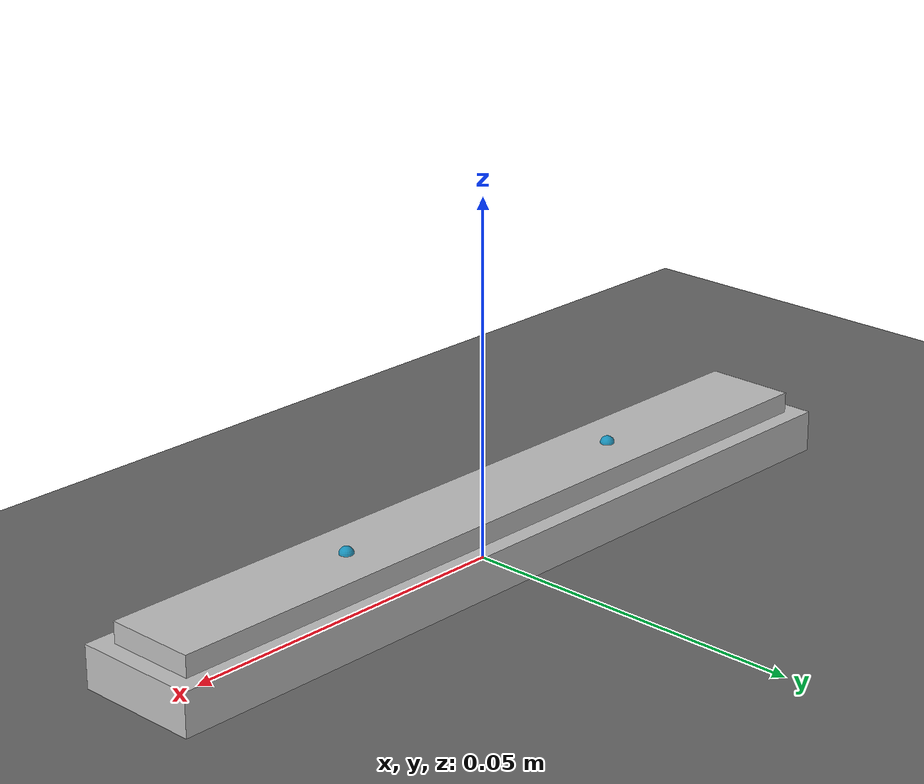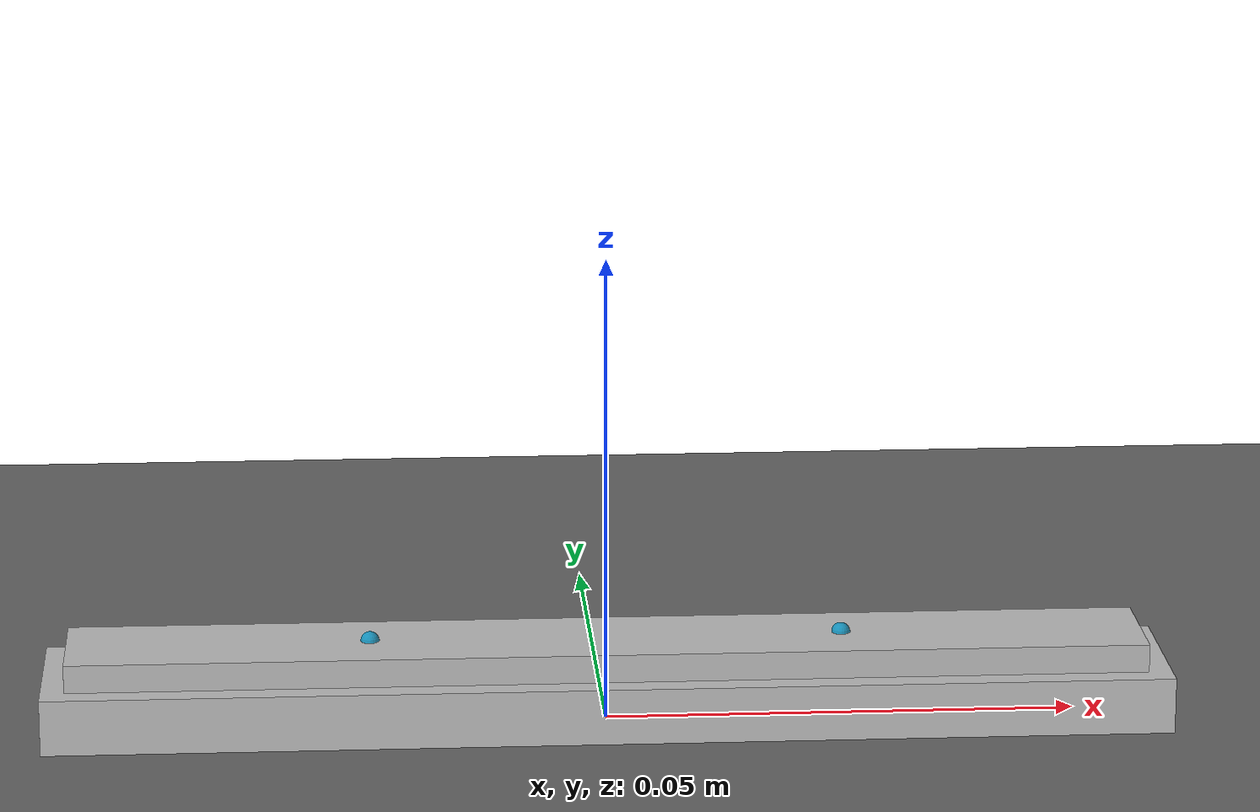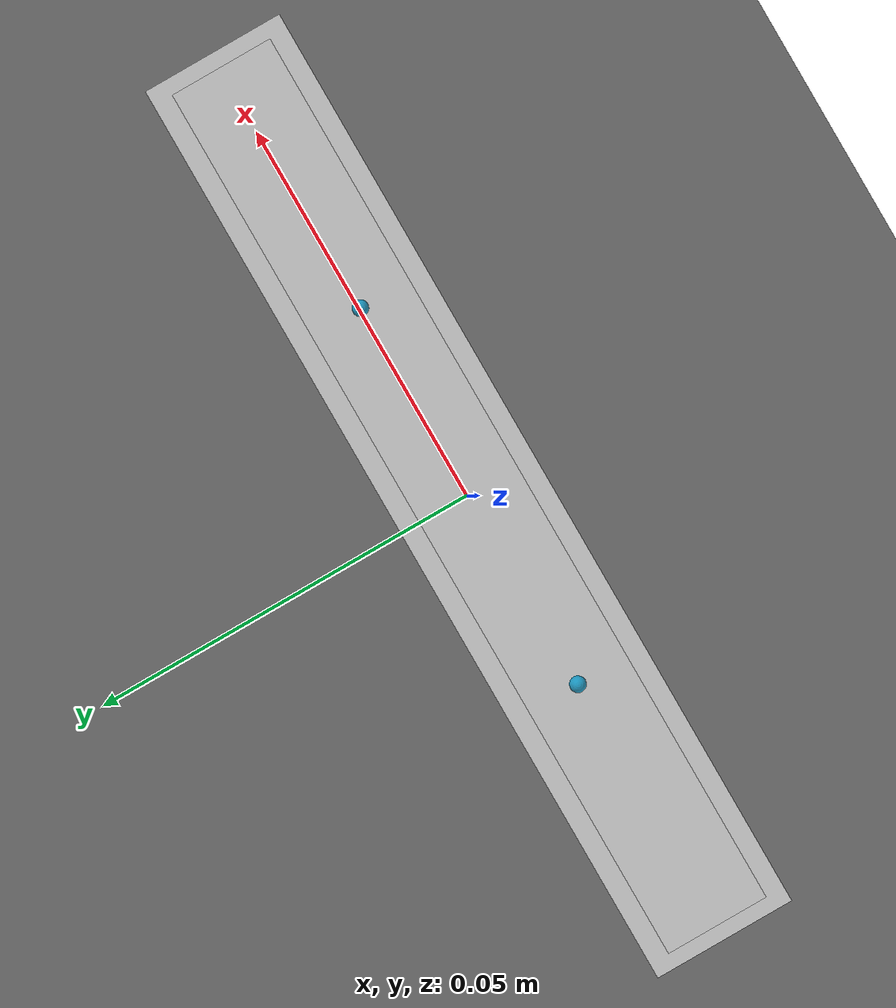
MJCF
<mujoco model="keyboard_keycap_space">

  <compiler angle="radian" autolimits="true"/>

  <option gravity="0 0 -9.81" timestep="0.002"/>

  <asset>
    <material name="pbt_gray"
              rgba="0.75 0.75 0.75 1"
              specular="0.1"
              shininess="0.2"
              reflectance="0.02"/>
  </asset>

  <worldbody>

    <geom name="ground" type="plane" size="1 1 0.1"
          pos="0 0 0"
          friction="0.8 0.005 0.0001"
          rgba="0.4 0.4 0.4 1"/>

    <body name="keycap_space" pos="0 0 0">

      <inertial pos="0 0 0.0045"
                mass="0.018"
                diaginertia="3.0e-6 3.0e-5 3.0e-5"/>

      <!-- freejoint added in integration scene -->

      <!-- ── BASE BOX ──────────────────────────────────────────────────
           119.1×18×6mm
           Half-extents: 0.05955, 0.009, 0.003
           Center z_local = 0.003
      -->
      <geom name="space_base"
            type="box"
            size="0.05955 0.009 0.003"
            pos="0 0 0.003"
            material="pbt_gray"
            density="1300"
            friction="0.6 0.005 0.0001"
            condim="4"
            priority="1"/>

      <geom name="space_top"
            type="box"
            size="0.05705 0.0065 0.0015"
            pos="0 0 0.0075"
            material="pbt_gray"
            density="1300"
            friction="0.6 0.005 0.0001"
            condim="4"
            priority="1"/>

      <!-- ══════════════════════════════════════════════════════════════
           REGISTRATION SITES
           ══════════════════════════════════════════════════════════════ -->

      <!-- Center stem clip — main switch insertion point -->
      <site name="stem_clip"
            type="sphere" size="0.001"
            pos="0 0 0"
            rgba="1 0.2 0.2 0.8"/>

      <!-- Left stabilizer clip — 50mm left of center -->
      <site name="stab_clip_L"
            type="sphere" size="0.001"
            pos="-0.050 0 0"
            rgba="1 0.5 0 0.8"/>

      <!-- Right stabilizer clip — 50mm right of center -->
      <site name="stab_clip_R"
            type="sphere" size="0.001"
            pos=" 0.050 0 0"
            rgba="1 0.5 0 0.8"/>

      <!-- Vacuum grasp sites — dual pad, left and right of center -->
      <site name="vacuum_grasp_L"
            type="sphere" size="0.001"
            pos="-0.025 0 0.009"
            rgba="0 0.6 0.8 0.8"/>

      <site name="vacuum_grasp_R"
            type="sphere" size="0.001"
            pos=" 0.025 0 0.009"
            rgba="0 0.6 0.8 0.8"/>

      <!-- Keycap center reference -->
      <site name="keycap_center"
            type="sphere" size="0.001"
            pos="0 0 0.0045"
            rgba="1 1 0 0.4"/>

    </body>

  </worldbody>

</mujoco>
